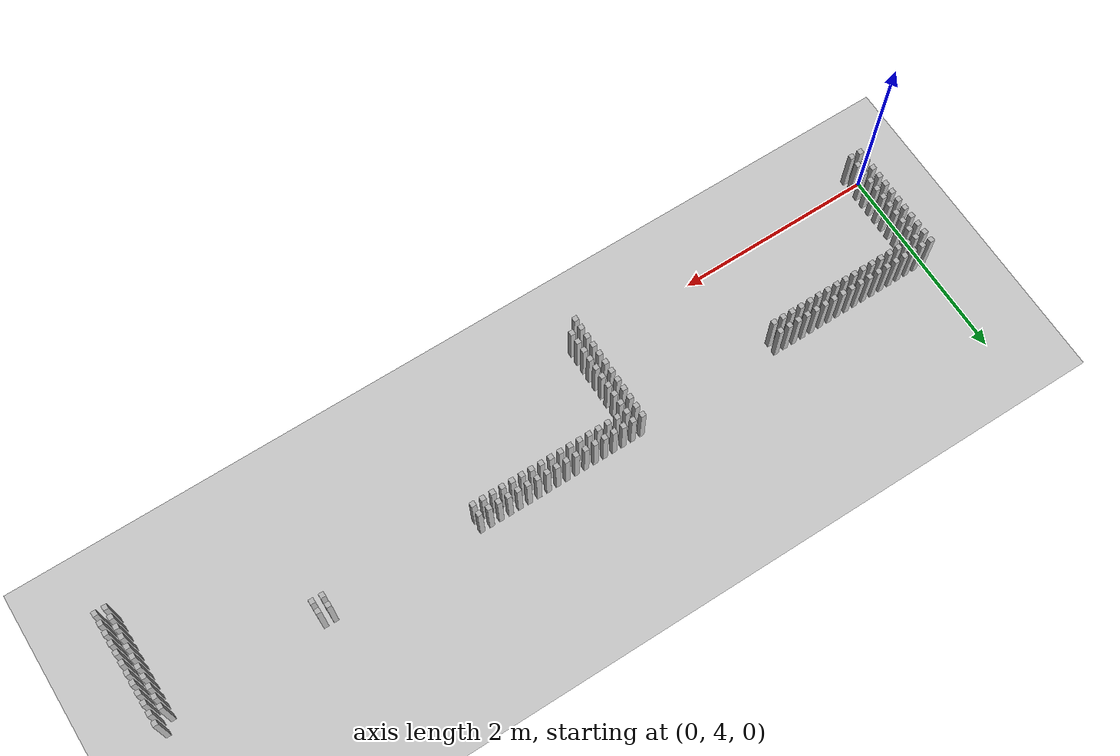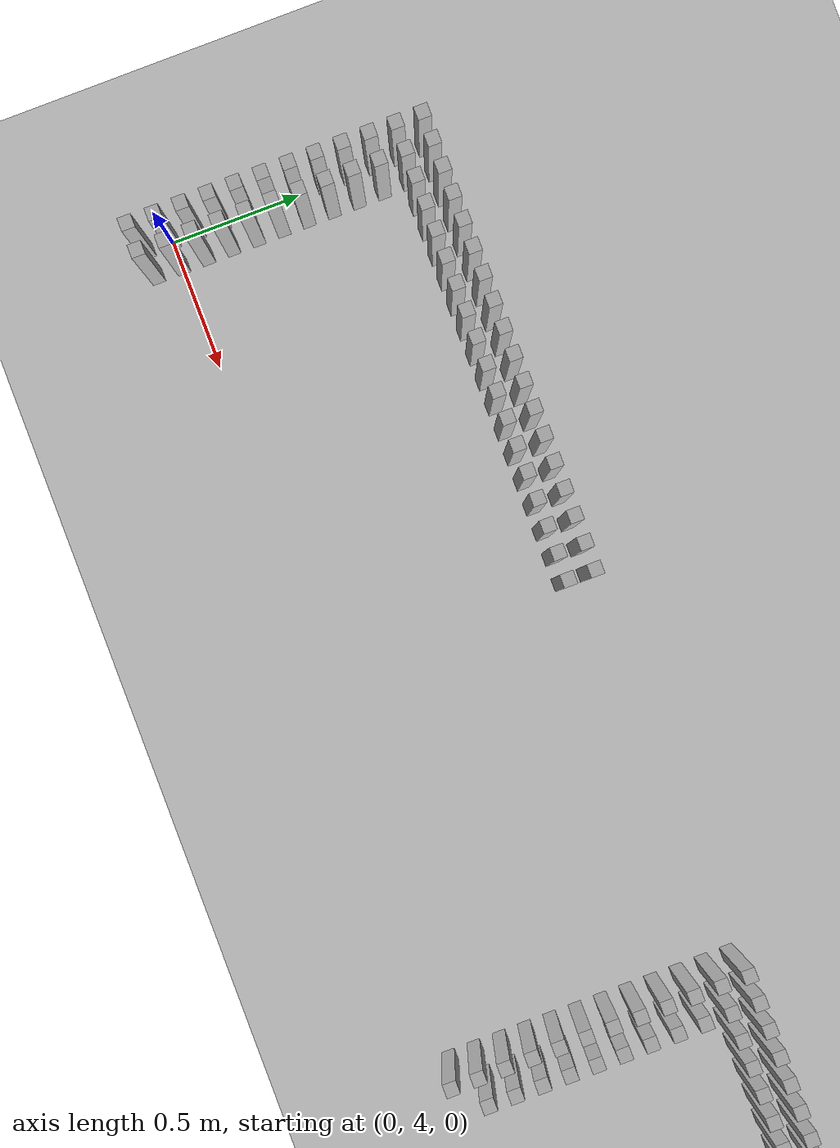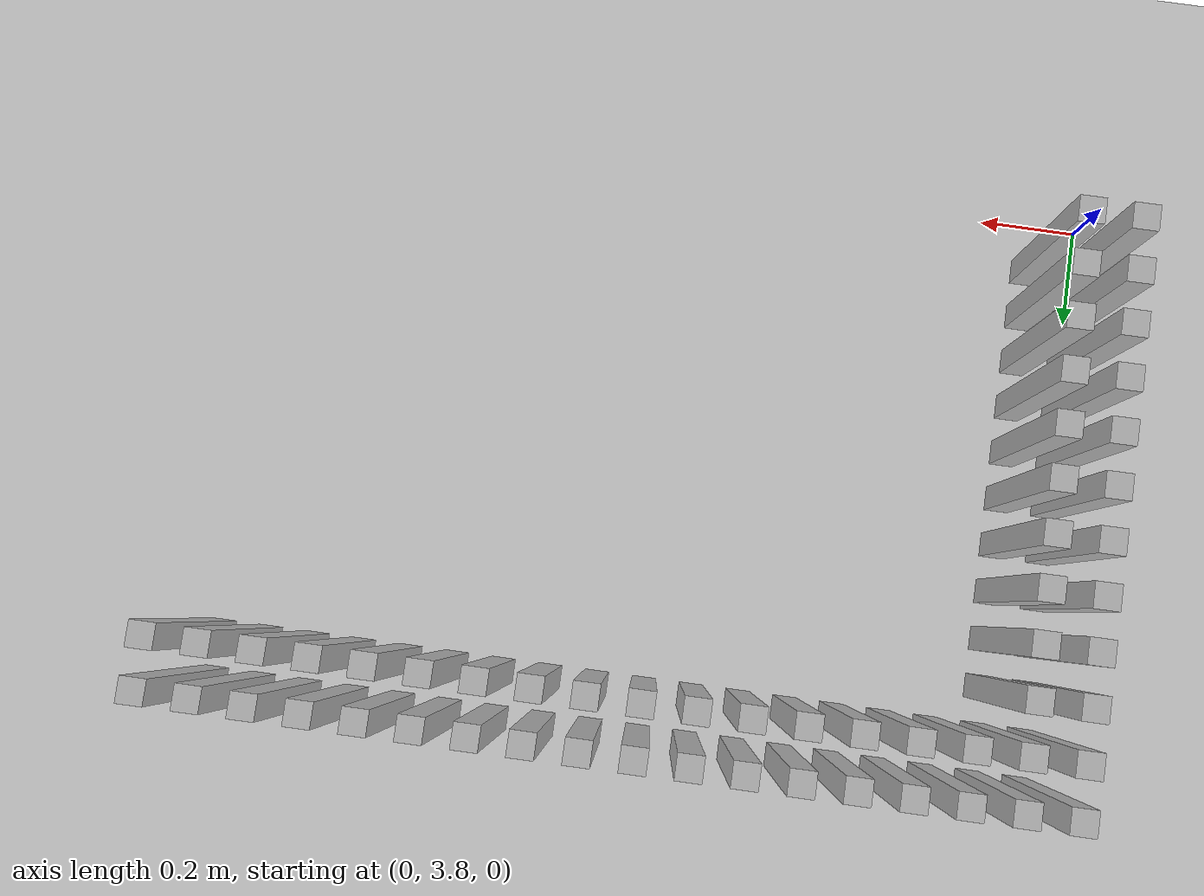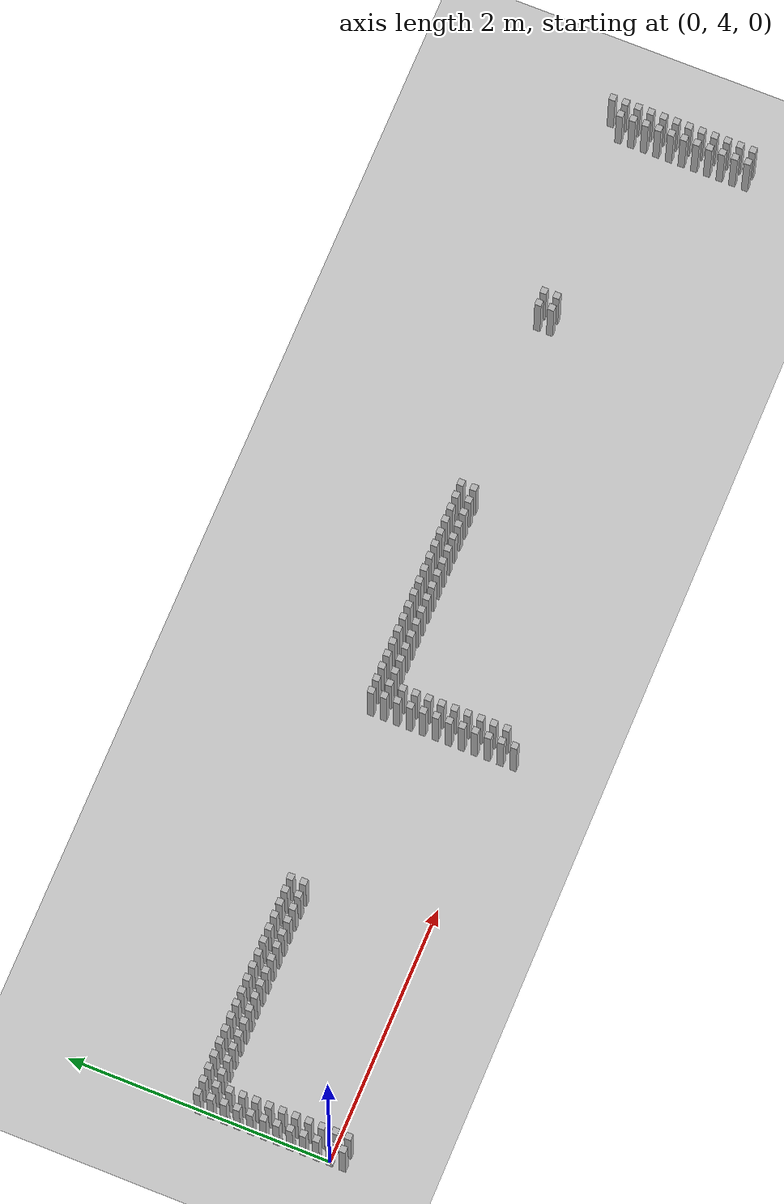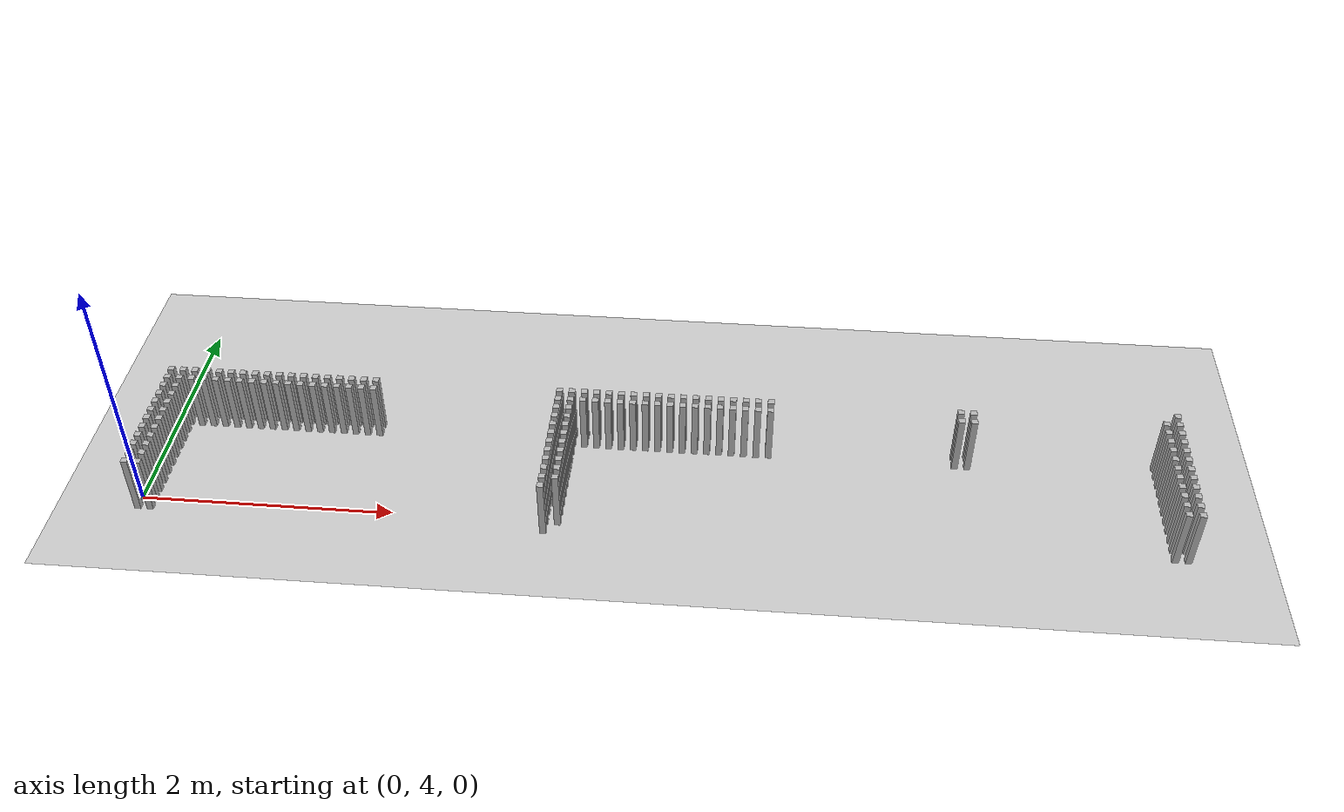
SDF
<sdf version="1.6">
 <world name="default_world">
  <include><uri>model://sun</uri></include>
  <include><uri>model://ground_plane</uri></include>
  <model name="wall_411">
   <static>true</static>
   <link name="link">
    <collision name="collision"><geometry><box><size>0.05 0.05 0.5</size></box></geometry></collision>
    <visual name="visual"><geometry><box><size>0.05 0.05 0.5</size></box></geometry></visual>
    <pose>8.1 5.1000000000000005 0.25 0 0 0</pose>
   </link>
  </model>
  <model name="wall_412">
   <static>true</static>
   <link name="link">
    <collision name="collision"><geometry><box><size>0.05 0.05 0.5</size></box></geometry></collision>
    <visual name="visual"><geometry><box><size>0.05 0.05 0.5</size></box></geometry></visual>
    <pose>0.0 5.0 0.25 0 0 0</pose>
   </link>
  </model>
  <model name="wall_413">
   <static>true</static>
   <link name="link">
    <collision name="collision"><geometry><box><size>0.05 0.05 0.5</size></box></geometry></collision>
    <visual name="visual"><geometry><box><size>0.05 0.05 0.5</size></box></geometry></visual>
    <pose>0.1 5.0 0.25 0 0 0</pose>
   </link>
  </model>
  <model name="wall_414">
   <static>true</static>
   <link name="link">
    <collision name="collision"><geometry><box><size>0.05 0.05 0.5</size></box></geometry></collision>
    <visual name="visual"><geometry><box><size>0.05 0.05 0.5</size></box></geometry></visual>
    <pose>0.2 5.0 0.25 0 0 0</pose>
   </link>
  </model>
  <model name="wall_415">
   <static>true</static>
   <link name="link">
    <collision name="collision"><geometry><box><size>0.05 0.05 0.5</size></box></geometry></collision>
    <visual name="visual"><geometry><box><size>0.05 0.05 0.5</size></box></geometry></visual>
    <pose>0.30000000000000004 5.0 0.25 0 0 0</pose>
   </link>
  </model>
  <model name="wall_416">
   <static>true</static>
   <link name="link">
    <collision name="collision"><geometry><box><size>0.05 0.05 0.5</size></box></geometry></collision>
    <visual name="visual"><geometry><box><size>0.05 0.05 0.5</size></box></geometry></visual>
    <pose>0.4 5.0 0.25 0 0 0</pose>
   </link>
  </model>
  <model name="wall_417">
   <static>true</static>
   <link name="link">
    <collision name="collision"><geometry><box><size>0.05 0.05 0.5</size></box></geometry></collision>
    <visual name="visual"><geometry><box><size>0.05 0.05 0.5</size></box></geometry></visual>
    <pose>0.5 5.0 0.25 0 0 0</pose>
   </link>
  </model>
  <model name="wall_418">
   <static>true</static>
   <link name="link">
    <collision name="collision"><geometry><box><size>0.05 0.05 0.5</size></box></geometry></collision>
    <visual name="visual"><geometry><box><size>0.05 0.05 0.5</size></box></geometry></visual>
    <pose>0.6000000000000001 5.0 0.25 0 0 0</pose>
   </link>
  </model>
  <model name="wall_419">
   <static>true</static>
   <link name="link">
    <collision name="collision"><geometry><box><size>0.05 0.05 0.5</size></box></geometry></collision>
    <visual name="visual"><geometry><box><size>0.05 0.05 0.5</size></box></geometry></visual>
    <pose>0.7000000000000001 5.0 0.25 0 0 0</pose>
   </link>
  </model>
  <model name="wall_420">
   <static>true</static>
   <link name="link">
    <collision name="collision"><geometry><box><size>0.05 0.05 0.5</size></box></geometry></collision>
    <visual name="visual"><geometry><box><size>0.05 0.05 0.5</size></box></geometry></visual>
    <pose>0.8 5.0 0.25 0 0 0</pose>
   </link>
  </model>
  <model name="wall_421">
   <static>true</static>
   <link name="link">
    <collision name="collision"><geometry><box><size>0.05 0.05 0.5</size></box></geometry></collision>
    <visual name="visual"><geometry><box><size>0.05 0.05 0.5</size></box></geometry></visual>
    <pose>0.9 5.0 0.25 0 0 0</pose>
   </link>
  </model>
  <model name="wall_422">
   <static>true</static>
   <link name="link">
    <collision name="collision"><geometry><box><size>0.05 0.05 0.5</size></box></geometry></collision>
    <visual name="visual"><geometry><box><size>0.05 0.05 0.5</size></box></geometry></visual>
    <pose>1.0 5.0 0.25 0 0 0</pose>
   </link>
  </model>
  <model name="wall_423">
   <static>true</static>
   <link name="link">
    <collision name="collision"><geometry><box><size>0.05 0.05 0.5</size></box></geometry></collision>
    <visual name="visual"><geometry><box><size>0.05 0.05 0.5</size></box></geometry></visual>
    <pose>1.1 5.0 0.25 0 0 0</pose>
   </link>
  </model>
  <model name="wall_424">
   <static>true</static>
   <link name="link">
    <collision name="collision"><geometry><box><size>0.05 0.05 0.5</size></box></geometry></collision>
    <visual name="visual"><geometry><box><size>0.05 0.05 0.5</size></box></geometry></visual>
    <pose>1.2000000000000002 5.0 0.25 0 0 0</pose>
   </link>
  </model>
  <model name="wall_425">
   <static>true</static>
   <link name="link">
    <collision name="collision"><geometry><box><size>0.05 0.05 0.5</size></box></geometry></collision>
    <visual name="visual"><geometry><box><size>0.05 0.05 0.5</size></box></geometry></visual>
    <pose>1.3 5.0 0.25 0 0 0</pose>
   </link>
  </model>
  <model name="wall_426">
   <static>true</static>
   <link name="link">
    <collision name="collision"><geometry><box><size>0.05 0.05 0.5</size></box></geometry></collision>
    <visual name="visual"><geometry><box><size>0.05 0.05 0.5</size></box></geometry></visual>
    <pose>1.4000000000000001 5.0 0.25 0 0 0</pose>
   </link>
  </model>
  <model name="wall_427">
   <static>true</static>
   <link name="link">
    <collision name="collision"><geometry><box><size>0.05 0.05 0.5</size></box></geometry></collision>
    <visual name="visual"><geometry><box><size>0.05 0.05 0.5</size></box></geometry></visual>
    <pose>1.5 5.0 0.25 0 0 0</pose>
   </link>
  </model>
  <model name="wall_428">
   <static>true</static>
   <link name="link">
    <collision name="collision"><geometry><box><size>0.05 0.05 0.5</size></box></geometry></collision>
    <visual name="visual"><geometry><box><size>0.05 0.05 0.5</size></box></geometry></visual>
    <pose>1.6 5.0 0.25 0 0 0</pose>
   </link>
  </model>
  <model name="wall_429">
   <static>true</static>
   <link name="link">
    <collision name="collision"><geometry><box><size>0.05 0.05 0.5</size></box></geometry></collision>
    <visual name="visual"><geometry><box><size>0.05 0.05 0.5</size></box></geometry></visual>
    <pose>1.7000000000000002 5.0 0.25 0 0 0</pose>
   </link>
  </model>
  <model name="wall_430">
   <static>true</static>
   <link name="link">
    <collision name="collision"><geometry><box><size>0.05 0.05 0.5</size></box></geometry></collision>
    <visual name="visual"><geometry><box><size>0.05 0.05 0.5</size></box></geometry></visual>
    <pose>3.2 5.0 0.25 0 0 0</pose>
   </link>
  </model>
  <model name="wall_431">
   <static>true</static>
   <link name="link">
    <collision name="collision"><geometry><box><size>0.05 0.05 0.5</size></box></geometry></collision>
    <visual name="visual"><geometry><box><size>0.05 0.05 0.5</size></box></geometry></visual>
    <pose>3.3000000000000003 5.0 0.25 0 0 0</pose>
   </link>
  </model>
  <model name="wall_432">
   <static>true</static>
   <link name="link">
    <collision name="collision"><geometry><box><size>0.05 0.05 0.5</size></box></geometry></collision>
    <visual name="visual"><geometry><box><size>0.05 0.05 0.5</size></box></geometry></visual>
    <pose>3.4000000000000004 5.0 0.25 0 0 0</pose>
   </link>
  </model>
  <model name="wall_433">
   <static>true</static>
   <link name="link">
    <collision name="collision"><geometry><box><size>0.05 0.05 0.5</size></box></geometry></collision>
    <visual name="visual"><geometry><box><size>0.05 0.05 0.5</size></box></geometry></visual>
    <pose>3.5 5.0 0.25 0 0 0</pose>
   </link>
  </model>
  <model name="wall_434">
   <static>true</static>
   <link name="link">
    <collision name="collision"><geometry><box><size>0.05 0.05 0.5</size></box></geometry></collision>
    <visual name="visual"><geometry><box><size>0.05 0.05 0.5</size></box></geometry></visual>
    <pose>3.6 5.0 0.25 0 0 0</pose>
   </link>
  </model>
  <model name="wall_435">
   <static>true</static>
   <link name="link">
    <collision name="collision"><geometry><box><size>0.05 0.05 0.5</size></box></geometry></collision>
    <visual name="visual"><geometry><box><size>0.05 0.05 0.5</size></box></geometry></visual>
    <pose>3.7 5.0 0.25 0 0 0</pose>
   </link>
  </model>
  <model name="wall_436">
   <static>true</static>
   <link name="link">
    <collision name="collision"><geometry><box><size>0.05 0.05 0.5</size></box></geometry></collision>
    <visual name="visual"><geometry><box><size>0.05 0.05 0.5</size></box></geometry></visual>
    <pose>3.8000000000000003 5.0 0.25 0 0 0</pose>
   </link>
  </model>
  <model name="wall_437">
   <static>true</static>
   <link name="link">
    <collision name="collision"><geometry><box><size>0.05 0.05 0.5</size></box></geometry></collision>
    <visual name="visual"><geometry><box><size>0.05 0.05 0.5</size></box></geometry></visual>
    <pose>3.9000000000000004 5.0 0.25 0 0 0</pose>
   </link>
  </model>
  <model name="wall_438">
   <static>true</static>
   <link name="link">
    <collision name="collision"><geometry><box><size>0.05 0.05 0.5</size></box></geometry></collision>
    <visual name="visual"><geometry><box><size>0.05 0.05 0.5</size></box></geometry></visual>
    <pose>4.0 5.0 0.25 0 0 0</pose>
   </link>
  </model>
  <model name="wall_439">
   <static>true</static>
   <link name="link">
    <collision name="collision"><geometry><box><size>0.05 0.05 0.5</size></box></geometry></collision>
    <visual name="visual"><geometry><box><size>0.05 0.05 0.5</size></box></geometry></visual>
    <pose>4.1000000000000005 5.0 0.25 0 0 0</pose>
   </link>
  </model>
  <model name="wall_440">
   <static>true</static>
   <link name="link">
    <collision name="collision"><geometry><box><size>0.05 0.05 0.5</size></box></geometry></collision>
    <visual name="visual"><geometry><box><size>0.05 0.05 0.5</size></box></geometry></visual>
    <pose>4.2 5.0 0.25 0 0 0</pose>
   </link>
  </model>
  <model name="wall_441">
   <static>true</static>
   <link name="link">
    <collision name="collision"><geometry><box><size>0.05 0.05 0.5</size></box></geometry></collision>
    <visual name="visual"><geometry><box><size>0.05 0.05 0.5</size></box></geometry></visual>
    <pose>4.3 5.0 0.25 0 0 0</pose>
   </link>
  </model>
  <model name="wall_442">
   <static>true</static>
   <link name="link">
    <collision name="collision"><geometry><box><size>0.05 0.05 0.5</size></box></geometry></collision>
    <visual name="visual"><geometry><box><size>0.05 0.05 0.5</size></box></geometry></visual>
    <pose>4.4 5.0 0.25 0 0 0</pose>
   </link>
  </model>
  <model name="wall_443">
   <static>true</static>
   <link name="link">
    <collision name="collision"><geometry><box><size>0.05 0.05 0.5</size></box></geometry></collision>
    <visual name="visual"><geometry><box><size>0.05 0.05 0.5</size></box></geometry></visual>
    <pose>4.5 5.0 0.25 0 0 0</pose>
   </link>
  </model>
  <model name="wall_444">
   <static>true</static>
   <link name="link">
    <collision name="collision"><geometry><box><size>0.05 0.05 0.5</size></box></geometry></collision>
    <visual name="visual"><geometry><box><size>0.05 0.05 0.5</size></box></geometry></visual>
    <pose>4.6000000000000005 5.0 0.25 0 0 0</pose>
   </link>
  </model>
  <model name="wall_445">
   <static>true</static>
   <link name="link">
    <collision name="collision"><geometry><box><size>0.05 0.05 0.5</size></box></geometry></collision>
    <visual name="visual"><geometry><box><size>0.05 0.05 0.5</size></box></geometry></visual>
    <pose>4.7 5.0 0.25 0 0 0</pose>
   </link>
  </model>
  <model name="wall_446">
   <static>true</static>
   <link name="link">
    <collision name="collision"><geometry><box><size>0.05 0.05 0.5</size></box></geometry></collision>
    <visual name="visual"><geometry><box><size>0.05 0.05 0.5</size></box></geometry></visual>
    <pose>4.800000000000001 5.0 0.25 0 0 0</pose>
   </link>
  </model>
  <model name="wall_447">
   <static>true</static>
   <link name="link">
    <collision name="collision"><geometry><box><size>0.05 0.05 0.5</size></box></geometry></collision>
    <visual name="visual"><geometry><box><size>0.05 0.05 0.5</size></box></geometry></visual>
    <pose>4.9 5.0 0.25 0 0 0</pose>
   </link>
  </model>
  <model name="wall_448">
   <static>true</static>
   <link name="link">
    <collision name="collision"><geometry><box><size>0.05 0.05 0.5</size></box></geometry></collision>
    <visual name="visual"><geometry><box><size>0.05 0.05 0.5</size></box></geometry></visual>
    <pose>6.4 5.0 0.25 0 0 0</pose>
   </link>
  </model>
  <model name="wall_449">
   <static>true</static>
   <link name="link">
    <collision name="collision"><geometry><box><size>0.05 0.05 0.5</size></box></geometry></collision>
    <visual name="visual"><geometry><box><size>0.05 0.05 0.5</size></box></geometry></visual>
    <pose>6.5 5.0 0.25 0 0 0</pose>
   </link>
  </model>
  <model name="wall_450">
   <static>true</static>
   <link name="link">
    <collision name="collision"><geometry><box><size>0.05 0.05 0.5</size></box></geometry></collision>
    <visual name="visual"><geometry><box><size>0.05 0.05 0.5</size></box></geometry></visual>
    <pose>8.0 5.0 0.25 0 0 0</pose>
   </link>
  </model>
  <model name="wall_451">
   <static>true</static>
   <link name="link">
    <collision name="collision"><geometry><box><size>0.05 0.05 0.5</size></box></geometry></collision>
    <visual name="visual"><geometry><box><size>0.05 0.05 0.5</size></box></geometry></visual>
    <pose>8.1 5.0 0.25 0 0 0</pose>
   </link>
  </model>
  <model name="wall_452">
   <static>true</static>
   <link name="link">
    <collision name="collision"><geometry><box><size>0.05 0.05 0.5</size></box></geometry></collision>
    <visual name="visual"><geometry><box><size>0.05 0.05 0.5</size></box></geometry></visual>
    <pose>0.0 4.9 0.25 0 0 0</pose>
   </link>
  </model>
  <model name="wall_453">
   <static>true</static>
   <link name="link">
    <collision name="collision"><geometry><box><size>0.05 0.05 0.5</size></box></geometry></collision>
    <visual name="visual"><geometry><box><size>0.05 0.05 0.5</size></box></geometry></visual>
    <pose>0.1 4.9 0.25 0 0 0</pose>
   </link>
  </model>
  <model name="wall_454">
   <static>true</static>
   <link name="link">
    <collision name="collision"><geometry><box><size>0.05 0.05 0.5</size></box></geometry></collision>
    <visual name="visual"><geometry><box><size>0.05 0.05 0.5</size></box></geometry></visual>
    <pose>0.2 4.9 0.25 0 0 0</pose>
   </link>
  </model>
  <model name="wall_455">
   <static>true</static>
   <link name="link">
    <collision name="collision"><geometry><box><size>0.05 0.05 0.5</size></box></geometry></collision>
    <visual name="visual"><geometry><box><size>0.05 0.05 0.5</size></box></geometry></visual>
    <pose>0.30000000000000004 4.9 0.25 0 0 0</pose>
   </link>
  </model>
  <model name="wall_456">
   <static>true</static>
   <link name="link">
    <collision name="collision"><geometry><box><size>0.05 0.05 0.5</size></box></geometry></collision>
    <visual name="visual"><geometry><box><size>0.05 0.05 0.5</size></box></geometry></visual>
    <pose>0.4 4.9 0.25 0 0 0</pose>
   </link>
  </model>
  <model name="wall_457">
   <static>true</static>
   <link name="link">
    <collision name="collision"><geometry><box><size>0.05 0.05 0.5</size></box></geometry></collision>
    <visual name="visual"><geometry><box><size>0.05 0.05 0.5</size></box></geometry></visual>
    <pose>0.5 4.9 0.25 0 0 0</pose>
   </link>
  </model>
  <model name="wall_458">
   <static>true</static>
   <link name="link">
    <collision name="collision"><geometry><box><size>0.05 0.05 0.5</size></box></geometry></collision>
    <visual name="visual"><geometry><box><size>0.05 0.05 0.5</size></box></geometry></visual>
    <pose>0.6000000000000001 4.9 0.25 0 0 0</pose>
   </link>
  </model>
  <model name="wall_459">
   <static>true</static>
   <link name="link">
    <collision name="collision"><geometry><box><size>0.05 0.05 0.5</size></box></geometry></collision>
    <visual name="visual"><geometry><box><size>0.05 0.05 0.5</size></box></geometry></visual>
    <pose>0.7000000000000001 4.9 0.25 0 0 0</pose>
   </link>
  </model>
  <model name="wall_460">
   <static>true</static>
   <link name="link">
    <collision name="collision"><geometry><box><size>0.05 0.05 0.5</size></box></geometry></collision>
    <visual name="visual"><geometry><box><size>0.05 0.05 0.5</size></box></geometry></visual>
    <pose>0.8 4.9 0.25 0 0 0</pose>
   </link>
  </model>
  <model name="wall_461">
   <static>true</static>
   <link name="link">
    <collision name="collision"><geometry><box><size>0.05 0.05 0.5</size></box></geometry></collision>
    <visual name="visual"><geometry><box><size>0.05 0.05 0.5</size></box></geometry></visual>
    <pose>0.9 4.9 0.25 0 0 0</pose>
   </link>
  </model>
  <model name="wall_462">
   <static>true</static>
   <link name="link">
    <collision name="collision"><geometry><box><size>0.05 0.05 0.5</size></box></geometry></collision>
    <visual name="visual"><geometry><box><size>0.05 0.05 0.5</size></box></geometry></visual>
    <pose>1.0 4.9 0.25 0 0 0</pose>
   </link>
  </model>
  <model name="wall_463">
   <static>true</static>
   <link name="link">
    <collision name="collision"><geometry><box><size>0.05 0.05 0.5</size></box></geometry></collision>
    <visual name="visual"><geometry><box><size>0.05 0.05 0.5</size></box></geometry></visual>
    <pose>1.1 4.9 0.25 0 0 0</pose>
   </link>
  </model>
  <model name="wall_464">
   <static>true</static>
   <link name="link">
    <collision name="collision"><geometry><box><size>0.05 0.05 0.5</size></box></geometry></collision>
    <visual name="visual"><geometry><box><size>0.05 0.05 0.5</size></box></geometry></visual>
    <pose>1.2000000000000002 4.9 0.25 0 0 0</pose>
   </link>
  </model>
  <model name="wall_465">
   <static>true</static>
   <link name="link">
    <collision name="collision"><geometry><box><size>0.05 0.05 0.5</size></box></geometry></collision>
    <visual name="visual"><geometry><box><size>0.05 0.05 0.5</size></box></geometry></visual>
    <pose>1.3 4.9 0.25 0 0 0</pose>
   </link>
  </model>
  <model name="wall_466">
   <static>true</static>
   <link name="link">
    <collision name="collision"><geometry><box><size>0.05 0.05 0.5</size></box></geometry></collision>
    <visual name="visual"><geometry><box><size>0.05 0.05 0.5</size></box></geometry></visual>
    <pose>1.4000000000000001 4.9 0.25 0 0 0</pose>
   </link>
  </model>
  <model name="wall_467">
   <static>true</static>
   <link name="link">
    <collision name="collision"><geometry><box><size>0.05 0.05 0.5</size></box></geometry></collision>
    <visual name="visual"><geometry><box><size>0.05 0.05 0.5</size></box></geometry></visual>
    <pose>1.5 4.9 0.25 0 0 0</pose>
   </link>
  </model>
  <model name="wall_468">
   <static>true</static>
   <link name="link">
    <collision name="collision"><geometry><box><size>0.05 0.05 0.5</size></box></geometry></collision>
    <visual name="visual"><geometry><box><size>0.05 0.05 0.5</size></box></geometry></visual>
    <pose>1.6 4.9 0.25 0 0 0</pose>
   </link>
  </model>
  <model name="wall_469">
   <static>true</static>
   <link name="link">
    <collision name="collision"><geometry><box><size>0.05 0.05 0.5</size></box></geometry></collision>
    <visual name="visual"><geometry><box><size>0.05 0.05 0.5</size></box></geometry></visual>
    <pose>1.7000000000000002 4.9 0.25 0 0 0</pose>
   </link>
  </model>
  <model name="wall_470">
   <static>true</static>
   <link name="link">
    <collision name="collision"><geometry><box><size>0.05 0.05 0.5</size></box></geometry></collision>
    <visual name="visual"><geometry><box><size>0.05 0.05 0.5</size></box></geometry></visual>
    <pose>3.2 4.9 0.25 0 0 0</pose>
   </link>
  </model>
  <model name="wall_471">
   <static>true</static>
   <link name="link">
    <collision name="collision"><geometry><box><size>0.05 0.05 0.5</size></box></geometry></collision>
    <visual name="visual"><geometry><box><size>0.05 0.05 0.5</size></box></geometry></visual>
    <pose>3.3000000000000003 4.9 0.25 0 0 0</pose>
   </link>
  </model>
  <model name="wall_472">
   <static>true</static>
   <link name="link">
    <collision name="collision"><geometry><box><size>0.05 0.05 0.5</size></box></geometry></collision>
    <visual name="visual"><geometry><box><size>0.05 0.05 0.5</size></box></geometry></visual>
    <pose>3.4000000000000004 4.9 0.25 0 0 0</pose>
   </link>
  </model>
  <model name="wall_473">
   <static>true</static>
   <link name="link">
    <collision name="collision"><geometry><box><size>0.05 0.05 0.5</size></box></geometry></collision>
    <visual name="visual"><geometry><box><size>0.05 0.05 0.5</size></box></geometry></visual>
    <pose>3.5 4.9 0.25 0 0 0</pose>
   </link>
  </model>
  <model name="wall_474">
   <static>true</static>
   <link name="link">
    <collision name="collision"><geometry><box><size>0.05 0.05 0.5</size></box></geometry></collision>
    <visual name="visual"><geometry><box><size>0.05 0.05 0.5</size></box></geometry></visual>
    <pose>3.6 4.9 0.25 0 0 0</pose>
   </link>
  </model>
  <model name="wall_475">
   <static>true</static>
   <link name="link">
    <collision name="collision"><geometry><box><size>0.05 0.05 0.5</size></box></geometry></collision>
    <visual name="visual"><geometry><box><size>0.05 0.05 0.5</size></box></geometry></visual>
    <pose>3.7 4.9 0.25 0 0 0</pose>
   </link>
  </model>
  <model name="wall_476">
   <static>true</static>
   <link name="link">
    <collision name="collision"><geometry><box><size>0.05 0.05 0.5</size></box></geometry></collision>
    <visual name="visual"><geometry><box><size>0.05 0.05 0.5</size></box></geometry></visual>
    <pose>3.8000000000000003 4.9 0.25 0 0 0</pose>
   </link>
  </model>
  <model name="wall_477">
   <static>true</static>
   <link name="link">
    <collision name="collision"><geometry><box><size>0.05 0.05 0.5</size></box></geometry></collision>
    <visual name="visual"><geometry><box><size>0.05 0.05 0.5</size></box></geometry></visual>
    <pose>3.9000000000000004 4.9 0.25 0 0 0</pose>
   </link>
  </model>
  <model name="wall_478">
   <static>true</static>
   <link name="link">
    <collision name="collision"><geometry><box><size>0.05 0.05 0.5</size></box></geometry></collision>
    <visual name="visual"><geometry><box><size>0.05 0.05 0.5</size></box></geometry></visual>
    <pose>4.0 4.9 0.25 0 0 0</pose>
   </link>
  </model>
  <model name="wall_479">
   <static>true</static>
   <link name="link">
    <collision name="collision"><geometry><box><size>0.05 0.05 0.5</size></box></geometry></collision>
    <visual name="visual"><geometry><box><size>0.05 0.05 0.5</size></box></geometry></visual>
    <pose>4.1000000000000005 4.9 0.25 0 0 0</pose>
   </link>
  </model>
  <model name="wall_480">
   <static>true</static>
   <link name="link">
    <collision name="collision"><geometry><box><size>0.05 0.05 0.5</size></box></geometry></collision>
    <visual name="visual"><geometry><box><size>0.05 0.05 0.5</size></box></geometry></visual>
    <pose>4.2 4.9 0.25 0 0 0</pose>
   </link>
  </model>
  <model name="wall_481">
   <static>true</static>
   <link name="link">
    <collision name="collision"><geometry><box><size>0.05 0.05 0.5</size></box></geometry></collision>
    <visual name="visual"><geometry><box><size>0.05 0.05 0.5</size></box></geometry></visual>
    <pose>4.3 4.9 0.25 0 0 0</pose>
   </link>
  </model>
  <model name="wall_482">
   <static>true</static>
   <link name="link">
    <collision name="collision"><geometry><box><size>0.05 0.05 0.5</size></box></geometry></collision>
    <visual name="visual"><geometry><box><size>0.05 0.05 0.5</size></box></geometry></visual>
    <pose>4.4 4.9 0.25 0 0 0</pose>
   </link>
  </model>
  <model name="wall_483">
   <static>true</static>
   <link name="link">
    <collision name="collision"><geometry><box><size>0.05 0.05 0.5</size></box></geometry></collision>
    <visual name="visual"><geometry><box><size>0.05 0.05 0.5</size></box></geometry></visual>
    <pose>4.5 4.9 0.25 0 0 0</pose>
   </link>
  </model>
  <model name="wall_484">
   <static>true</static>
   <link name="link">
    <collision name="collision"><geometry><box><size>0.05 0.05 0.5</size></box></geometry></collision>
    <visual name="visual"><geometry><box><size>0.05 0.05 0.5</size></box></geometry></visual>
    <pose>4.6000000000000005 4.9 0.25 0 0 0</pose>
   </link>
  </model>
  <model name="wall_485">
   <static>true</static>
   <link name="link">
    <collision name="collision"><geometry><box><size>0.05 0.05 0.5</size></box></geometry></collision>
    <visual name="visual"><geometry><box><size>0.05 0.05 0.5</size></box></geometry></visual>
    <pose>4.7 4.9 0.25 0 0 0</pose>
   </link>
  </model>
  <model name="wall_486">
   <static>true</static>
   <link name="link">
    <collision name="collision"><geometry><box><size>0.05 0.05 0.5</size></box></geometry></collision>
    <visual name="visual"><geometry><box><size>0.05 0.05 0.5</size></box></geometry></visual>
    <pose>4.800000000000001 4.9 0.25 0 0 0</pose>
   </link>
  </model>
  <model name="wall_487">
   <static>true</static>
   <link name="link">
    <collision name="collision"><geometry><box><size>0.05 0.05 0.5</size></box></geometry></collision>
    <visual name="visual"><geometry><box><size>0.05 0.05 0.5</size></box></geometry></visual>
    <pose>4.9 4.9 0.25 0 0 0</pose>
   </link>
  </model>
  <model name="wall_488">
   <static>true</static>
   <link name="link">
    <collision name="collision"><geometry><box><size>0.05 0.05 0.5</size></box></geometry></collision>
    <visual name="visual"><geometry><box><size>0.05 0.05 0.5</size></box></geometry></visual>
    <pose>6.4 4.9 0.25 0 0 0</pose>
   </link>
  </model>
  <model name="wall_489">
   <static>true</static>
   <link name="link">
    <collision name="collision"><geometry><box><size>0.05 0.05 0.5</size></box></geometry></collision>
    <visual name="visual"><geometry><box><size>0.05 0.05 0.5</size></box></geometry></visual>
    <pose>6.5 4.9 0.25 0 0 0</pose>
   </link>
  </model>
  <model name="wall_490">
   <static>true</static>
   <link name="link">
    <collision name="collision"><geometry><box><size>0.05 0.05 0.5</size></box></geometry></collision>
    <visual name="visual"><geometry><box><size>0.05 0.05 0.5</size></box></geometry></visual>
    <pose>8.0 4.9 0.25 0 0 0</pose>
   </link>
  </model>
  <model name="wall_491">
   <static>true</static>
   <link name="link">
    <collision name="collision"><geometry><box><size>0.05 0.05 0.5</size></box></geometry></collision>
    <visual name="visual"><geometry><box><size>0.05 0.05 0.5</size></box></geometry></visual>
    <pose>8.1 4.9 0.25 0 0 0</pose>
   </link>
  </model>
  <model name="wall_492">
   <static>true</static>
   <link name="link">
    <collision name="collision"><geometry><box><size>0.05 0.05 0.5</size></box></geometry></collision>
    <visual name="visual"><geometry><box><size>0.05 0.05 0.5</size></box></geometry></visual>
    <pose>0.0 4.800000000000001 0.25 0 0 0</pose>
   </link>
  </model>
  <model name="wall_493">
   <static>true</static>
   <link name="link">
    <collision name="collision"><geometry><box><size>0.05 0.05 0.5</size></box></geometry></collision>
    <visual name="visual"><geometry><box><size>0.05 0.05 0.5</size></box></geometry></visual>
    <pose>0.1 4.800000000000001 0.25 0 0 0</pose>
   </link>
  </model>
  <model name="wall_494">
   <static>true</static>
   <link name="link">
    <collision name="collision"><geometry><box><size>0.05 0.05 0.5</size></box></geometry></collision>
    <visual name="visual"><geometry><box><size>0.05 0.05 0.5</size></box></geometry></visual>
    <pose>3.2 4.800000000000001 0.25 0 0 0</pose>
   </link>
  </model>
  <model name="wall_495">
   <static>true</static>
   <link name="link">
    <collision name="collision"><geometry><box><size>0.05 0.05 0.5</size></box></geometry></collision>
    <visual name="visual"><geometry><box><size>0.05 0.05 0.5</size></box></geometry></visual>
    <pose>3.3000000000000003 4.800000000000001 0.25 0 0 0</pose>
   </link>
  </model>
  <model name="wall_496">
   <static>true</static>
   <link name="link">
    <collision name="collision"><geometry><box><size>0.05 0.05 0.5</size></box></geometry></collision>
    <visual name="visual"><geometry><box><size>0.05 0.05 0.5</size></box></geometry></visual>
    <pose>8.0 4.800000000000001 0.25 0 0 0</pose>
   </link>
  </model>
  <model name="wall_497">
   <static>true</static>
   <link name="link">
    <collision name="collision"><geometry><box><size>0.05 0.05 0.5</size></box></geometry></collision>
    <visual name="visual"><geometry><box><size>0.05 0.05 0.5</size></box></geometry></visual>
    <pose>8.1 4.800000000000001 0.25 0 0 0</pose>
   </link>
  </model>
  <model name="wall_498">
   <static>true</static>
   <link name="link">
    <collision name="collision"><geometry><box><size>0.05 0.05 0.5</size></box></geometry></collision>
    <visual name="visual"><geometry><box><size>0.05 0.05 0.5</size></box></geometry></visual>
    <pose>0.0 4.7 0.25 0 0 0</pose>
   </link>
  </model>
  <model name="wall_499">
   <static>true</static>
   <link name="link">
    <collision name="collision"><geometry><box><size>0.05 0.05 0.5</size></box></geometry></collision>
    <visual name="visual"><geometry><box><size>0.05 0.05 0.5</size></box></geometry></visual>
    <pose>0.1 4.7 0.25 0 0 0</pose>
   </link>
  </model>
  <model name="wall_500">
   <static>true</static>
   <link name="link">
    <collision name="collision"><geometry><box><size>0.05 0.05 0.5</size></box></geometry></collision>
    <visual name="visual"><geometry><box><size>0.05 0.05 0.5</size></box></geometry></visual>
    <pose>3.2 4.7 0.25 0 0 0</pose>
   </link>
  </model>
  <model name="wall_501">
   <static>true</static>
   <link name="link">
    <collision name="collision"><geometry><box><size>0.05 0.05 0.5</size></box></geometry></collision>
    <visual name="visual"><geometry><box><size>0.05 0.05 0.5</size></box></geometry></visual>
    <pose>3.3000000000000003 4.7 0.25 0 0 0</pose>
   </link>
  </model>
  <model name="wall_502">
   <static>true</static>
   <link name="link">
    <collision name="collision"><geometry><box><size>0.05 0.05 0.5</size></box></geometry></collision>
    <visual name="visual"><geometry><box><size>0.05 0.05 0.5</size></box></geometry></visual>
    <pose>8.0 4.7 0.25 0 0 0</pose>
   </link>
  </model>
  <model name="wall_503">
   <static>true</static>
   <link name="link">
    <collision name="collision"><geometry><box><size>0.05 0.05 0.5</size></box></geometry></collision>
    <visual name="visual"><geometry><box><size>0.05 0.05 0.5</size></box></geometry></visual>
    <pose>8.1 4.7 0.25 0 0 0</pose>
   </link>
  </model>
  <model name="wall_504">
   <static>true</static>
   <link name="link">
    <collision name="collision"><geometry><box><size>0.05 0.05 0.5</size></box></geometry></collision>
    <visual name="visual"><geometry><box><size>0.05 0.05 0.5</size></box></geometry></visual>
    <pose>0.0 4.6000000000000005 0.25 0 0 0</pose>
   </link>
  </model>
  <model name="wall_505">
   <static>true</static>
   <link name="link">
    <collision name="collision"><geometry><box><size>0.05 0.05 0.5</size></box></geometry></collision>
    <visual name="visual"><geometry><box><size>0.05 0.05 0.5</size></box></geometry></visual>
    <pose>0.1 4.6000000000000005 0.25 0 0 0</pose>
   </link>
  </model>
  <model name="wall_506">
   <static>true</static>
   <link name="link">
    <collision name="collision"><geometry><box><size>0.05 0.05 0.5</size></box></geometry></collision>
    <visual name="visual"><geometry><box><size>0.05 0.05 0.5</size></box></geometry></visual>
    <pose>3.2 4.6000000000000005 0.25 0 0 0</pose>
   </link>
  </model>
  <model name="wall_507">
   <static>true</static>
   <link name="link">
    <collision name="collision"><geometry><box><size>0.05 0.05 0.5</size></box></geometry></collision>
    <visual name="visual"><geometry><box><size>0.05 0.05 0.5</size></box></geometry></visual>
    <pose>3.3000000000000003 4.6000000000000005 0.25 0 0 0</pose>
   </link>
  </model>
  <model name="wall_508">
   <static>true</static>
   <link name="link">
    <collision name="collision"><geometry><box><size>0.05 0.05 0.5</size></box></geometry></collision>
    <visual name="visual"><geometry><box><size>0.05 0.05 0.5</size></box></geometry></visual>
    <pose>8.0 4.6000000000000005 0.25 0 0 0</pose>
   </link>
  </model>
  <model name="wall_509">
   <static>true</static>
   <link name="link">
    <collision name="collision"><geometry><box><size>0.05 0.05 0.5</size></box></geometry></collision>
    <visual name="visual"><geometry><box><size>0.05 0.05 0.5</size></box></geometry></visual>
    <pose>8.1 4.6000000000000005 0.25 0 0 0</pose>
   </link>
  </model>
  <model name="wall_510">
   <static>true</static>
   <link name="link">
    <collision name="collision"><geometry><box><size>0.05 0.05 0.5</size></box></geometry></collision>
    <visual name="visual"><geometry><box><size>0.05 0.05 0.5</size></box></geometry></visual>
    <pose>0.0 4.5 0.25 0 0 0</pose>
   </link>
  </model>
  <model name="wall_511">
   <static>true</static>
   <link name="link">
    <collision name="collision"><geometry><box><size>0.05 0.05 0.5</size></box></geometry></collision>
    <visual name="visual"><geometry><box><size>0.05 0.05 0.5</size></box></geometry></visual>
    <pose>0.1 4.5 0.25 0 0 0</pose>
   </link>
  </model>
  <model name="wall_512">
   <static>true</static>
   <link name="link">
    <collision name="collision"><geometry><box><size>0.05 0.05 0.5</size></box></geometry></collision>
    <visual name="visual"><geometry><box><size>0.05 0.05 0.5</size></box></geometry></visual>
    <pose>3.2 4.5 0.25 0 0 0</pose>
   </link>
  </model>
  <model name="wall_513">
   <static>true</static>
   <link name="link">
    <collision name="collision"><geometry><box><size>0.05 0.05 0.5</size></box></geometry></collision>
    <visual name="visual"><geometry><box><size>0.05 0.05 0.5</size></box></geometry></visual>
    <pose>3.3000000000000003 4.5 0.25 0 0 0</pose>
   </link>
  </model>
  <model name="wall_514">
   <static>true</static>
   <link name="link">
    <collision name="collision"><geometry><box><size>0.05 0.05 0.5</size></box></geometry></collision>
    <visual name="visual"><geometry><box><size>0.05 0.05 0.5</size></box></geometry></visual>
    <pose>8.0 4.5 0.25 0 0 0</pose>
   </link>
  </model>
  <model name="wall_515">
   <static>true</static>
   <link name="link">
    <collision name="collision"><geometry><box><size>0.05 0.05 0.5</size></box></geometry></collision>
    <visual name="visual"><geometry><box><size>0.05 0.05 0.5</size></box></geometry></visual>
    <pose>8.1 4.5 0.25 0 0 0</pose>
   </link>
  </model>
  <model name="wall_516">
   <static>true</static>
   <link name="link">
    <collision name="collision"><geometry><box><size>0.05 0.05 0.5</size></box></geometry></collision>
    <visual name="visual"><geometry><box><size>0.05 0.05 0.5</size></box></geometry></visual>
    <pose>0.0 4.4 0.25 0 0 0</pose>
   </link>
  </model>
  <model name="wall_517">
   <static>true</static>
   <link name="link">
    <collision name="collision"><geometry><box><size>0.05 0.05 0.5</size></box></geometry></collision>
    <visual name="visual"><geometry><box><size>0.05 0.05 0.5</size></box></geometry></visual>
    <pose>0.1 4.4 0.25 0 0 0</pose>
   </link>
  </model>
  <model name="wall_518">
   <static>true</static>
   <link name="link">
    <collision name="collision"><geometry><box><size>0.05 0.05 0.5</size></box></geometry></collision>
    <visual name="visual"><geometry><box><size>0.05 0.05 0.5</size></box></geometry></visual>
    <pose>3.2 4.4 0.25 0 0 0</pose>
   </link>
  </model>
  <model name="wall_519">
   <static>true</static>
   <link name="link">
    <collision name="collision"><geometry><box><size>0.05 0.05 0.5</size></box></geometry></collision>
    <visual name="visual"><geometry><box><size>0.05 0.05 0.5</size></box></geometry></visual>
    <pose>3.3000000000000003 4.4 0.25 0 0 0</pose>
   </link>
  </model>
  <model name="wall_520">
   <static>true</static>
   <link name="link">
    <collision name="collision"><geometry><box><size>0.05 0.05 0.5</size></box></geometry></collision>
    <visual name="visual"><geometry><box><size>0.05 0.05 0.5</size></box></geometry></visual>
    <pose>8.0 4.4 0.25 0 0 0</pose>
   </link>
  </model>
  <model name="wall_521">
   <static>true</static>
   <link name="link">
    <collision name="collision"><geometry><box><size>0.05 0.05 0.5</size></box></geometry></collision>
    <visual name="visual"><geometry><box><size>0.05 0.05 0.5</size></box></geometry></visual>
    <pose>8.1 4.4 0.25 0 0 0</pose>
   </link>
  </model>
  <model name="wall_522">
   <static>true</static>
   <link name="link">
    <collision name="collision"><geometry><box><size>0.05 0.05 0.5</size></box></geometry></collision>
    <visual name="visual"><geometry><box><size>0.05 0.05 0.5</size></box></geometry></visual>
    <pose>0.0 4.3 0.25 0 0 0</pose>
   </link>
  </model>
  <model name="wall_523">
   <static>true</static>
   <link name="link">
    <collision name="collision"><geometry><box><size>0.05 0.05 0.5</size></box></geometry></collision>
    <visual name="visual"><geometry><box><size>0.05 0.05 0.5</size></box></geometry></visual>
    <pose>0.1 4.3 0.25 0 0 0</pose>
   </link>
  </model>
  <model name="wall_524">
   <static>true</static>
   <link name="link">
    <collision name="collision"><geometry><box><size>0.05 0.05 0.5</size></box></geometry></collision>
    <visual name="visual"><geometry><box><size>0.05 0.05 0.5</size></box></geometry></visual>
    <pose>3.2 4.3 0.25 0 0 0</pose>
   </link>
  </model>
  <model name="wall_525">
   <static>true</static>
   <link name="link">
    <collision name="collision"><geometry><box><size>0.05 0.05 0.5</size></box></geometry></collision>
    <visual name="visual"><geometry><box><size>0.05 0.05 0.5</size></box></geometry></visual>
    <pose>3.3000000000000003 4.3 0.25 0 0 0</pose>
   </link>
  </model>
  <model name="wall_526">
   <static>true</static>
   <link name="link">
    <collision name="collision"><geometry><box><size>0.05 0.05 0.5</size></box></geometry></collision>
    <visual name="visual"><geometry><box><size>0.05 0.05 0.5</size></box></geometry></visual>
    <pose>8.0 4.3 0.25 0 0 0</pose>
   </link>
  </model>
  <model name="wall_527">
   <static>true</static>
   <link name="link">
    <collision name="collision"><geometry><box><size>0.05 0.05 0.5</size></box></geometry></collision>
    <visual name="visual"><geometry><box><size>0.05 0.05 0.5</size></box></geometry></visual>
    <pose>8.1 4.3 0.25 0 0 0</pose>
   </link>
  </model>
  <model name="wall_528">
   <static>true</static>
   <link name="link">
    <collision name="collision"><geometry><box><size>0.05 0.05 0.5</size></box></geometry></collision>
    <visual name="visual"><geometry><box><size>0.05 0.05 0.5</size></box></geometry></visual>
    <pose>0.0 4.2 0.25 0 0 0</pose>
   </link>
  </model>
  <model name="wall_529">
   <static>true</static>
   <link name="link">
    <collision name="collision"><geometry><box><size>0.05 0.05 0.5</size></box></geometry></collision>
    <visual name="visual"><geometry><box><size>0.05 0.05 0.5</size></box></geometry></visual>
    <pose>0.1 4.2 0.25 0 0 0</pose>
   </link>
  </model>
  <model name="wall_530">
   <static>true</static>
   <link name="link">
    <collision name="collision"><geometry><box><size>0.05 0.05 0.5</size></box></geometry></collision>
    <visual name="visual"><geometry><box><size>0.05 0.05 0.5</size></box></geometry></visual>
    <pose>3.2 4.2 0.25 0 0 0</pose>
   </link>
  </model>
  <model name="wall_531">
   <static>true</static>
   <link name="link">
    <collision name="collision"><geometry><box><size>0.05 0.05 0.5</size></box></geometry></collision>
    <visual name="visual"><geometry><box><size>0.05 0.05 0.5</size></box></geometry></visual>
    <pose>3.3000000000000003 4.2 0.25 0 0 0</pose>
   </link>
  </model>
  <model name="wall_532">
   <static>true</static>
   <link name="link">
    <collision name="collision"><geometry><box><size>0.05 0.05 0.5</size></box></geometry></collision>
    <visual name="visual"><geometry><box><size>0.05 0.05 0.5</size></box></geometry></visual>
    <pose>8.0 4.2 0.25 0 0 0</pose>
   </link>
  </model>
  <model name="wall_533">
   <static>true</static>
   <link name="link">
    <collision name="collision"><geometry><box><size>0.05 0.05 0.5</size></box></geometry></collision>
    <visual name="visual"><geometry><box><size>0.05 0.05 0.5</size></box></geometry></visual>
    <pose>8.1 4.2 0.25 0 0 0</pose>
   </link>
  </model>
  <model name="wall_534">
   <static>true</static>
   <link name="link">
    <collision name="collision"><geometry><box><size>0.05 0.05 0.5</size></box></geometry></collision>
    <visual name="visual"><geometry><box><size>0.05 0.05 0.5</size></box></geometry></visual>
    <pose>0.0 4.1000000000000005 0.25 0 0 0</pose>
   </link>
  </model>
  <model name="wall_535">
   <static>true</static>
   <link name="link">
    <collision name="collision"><geometry><box><size>0.05 0.05 0.5</size></box></geometry></collision>
    <visual name="visual"><geometry><box><size>0.05 0.05 0.5</size></box></geometry></visual>
    <pose>0.1 4.1000000000000005 0.25 0 0 0</pose>
   </link>
  </model>
  <model name="wall_536">
   <static>true</static>
   <link name="link">
    <collision name="collision"><geometry><box><size>0.05 0.05 0.5</size></box></geometry></collision>
    <visual name="visual"><geometry><box><size>0.05 0.05 0.5</size></box></geometry></visual>
    <pose>3.2 4.1000000000000005 0.25 0 0 0</pose>
   </link>
  </model>
  <model name="wall_537">
   <static>true</static>
   <link name="link">
    <collision name="collision"><geometry><box><size>0.05 0.05 0.5</size></box></geometry></collision>
    <visual name="visual"><geometry><box><size>0.05 0.05 0.5</size></box></geometry></visual>
    <pose>3.3000000000000003 4.1000000000000005 0.25 0 0 0</pose>
   </link>
  </model>
  <model name="wall_538">
   <static>true</static>
   <link name="link">
    <collision name="collision"><geometry><box><size>0.05 0.05 0.5</size></box></geometry></collision>
    <visual name="visual"><geometry><box><size>0.05 0.05 0.5</size></box></geometry></visual>
    <pose>8.0 4.1000000000000005 0.25 0 0 0</pose>
   </link>
  </model>
  <model name="wall_539">
   <static>true</static>
   <link name="link">
    <collision name="collision"><geometry><box><size>0.05 0.05 0.5</size></box></geometry></collision>
    <visual name="visual"><geometry><box><size>0.05 0.05 0.5</size></box></geometry></visual>
    <pose>8.1 4.1000000000000005 0.25 0 0 0</pose>
   </link>
  </model>
  <model name="wall_540">
   <static>true</static>
   <link name="link">
    <collision name="collision"><geometry><box><size>0.05 0.05 0.5</size></box></geometry></collision>
    <visual name="visual"><geometry><box><size>0.05 0.05 0.5</size></box></geometry></visual>
    <pose>0.0 4.0 0.25 0 0 0</pose>
   </link>
  </model>
  <model name="wall_541">
   <static>true</static>
   <link name="link">
    <collision name="collision"><geometry><box><size>0.05 0.05 0.5</size></box></geometry></collision>
    <visual name="visual"><geometry><box><size>0.05 0.05 0.5</size></box></geometry></visual>
    <pose>0.1 4.0 0.25 0 0 0</pose>
   </link>
  </model>
  <model name="wall_542">
   <static>true</static>
   <link name="link">
    <collision name="collision"><geometry><box><size>0.05 0.05 0.5</size></box></geometry></collision>
    <visual name="visual"><geometry><box><size>0.05 0.05 0.5</size></box></geometry></visual>
    <pose>3.2 4.0 0.25 0 0 0</pose>
   </link>
  </model>
  <model name="wall_543">
   <static>true</static>
   <link name="link">
    <collision name="collision"><geometry><box><size>0.05 0.05 0.5</size></box></geometry></collision>
    <visual name="visual"><geometry><box><size>0.05 0.05 0.5</size></box></geometry></visual>
    <pose>3.3000000000000003 4.0 0.25 0 0 0</pose>
   </link>
  </model>
  <model name="wall_544">
   <static>true</static>
   <link name="link">
    <collision name="collision"><geometry><box><size>0.05 0.05 0.5</size></box></geometry></collision>
    <visual name="visual"><geometry><box><size>0.05 0.05 0.5</size></box></geometry></visual>
    <pose>8.0 4.0 0.25 0 0 0</pose>
   </link>
  </model>
  <model name="wall_545">
   <static>true</static>
   <link name="link">
    <collision name="collision"><geometry><box><size>0.05 0.05 0.5</size></box></geometry></collision>
    <visual name="visual"><geometry><box><size>0.05 0.05 0.5</size></box></geometry></visual>
    <pose>8.1 4.0 0.25 0 0 0</pose>
   </link>
  </model>
  <model name="wall_546">
   <static>true</static>
   <link name="link">
    <collision name="collision"><geometry><box><size>0.05 0.05 0.5</size></box></geometry></collision>
    <visual name="visual"><geometry><box><size>0.05 0.05 0.5</size></box></geometry></visual>
    <pose>0.0 3.9000000000000004 0.25 0 0 0</pose>
   </link>
  </model>
  <model name="wall_547">
   <static>true</static>
   <link name="link">
    <collision name="collision"><geometry><box><size>0.05 0.05 0.5</size></box></geometry></collision>
    <visual name="visual"><geometry><box><size>0.05 0.05 0.5</size></box></geometry></visual>
    <pose>0.1 3.9000000000000004 0.25 0 0 0</pose>
   </link>
  </model>
  <model name="wall_548">
   <static>true</static>
   <link name="link">
    <collision name="collision"><geometry><box><size>0.05 0.05 0.5</size></box></geometry></collision>
    <visual name="visual"><geometry><box><size>0.05 0.05 0.5</size></box></geometry></visual>
    <pose>3.2 3.9000000000000004 0.25 0 0 0</pose>
   </link>
  </model>
 </world>
</sdf>
